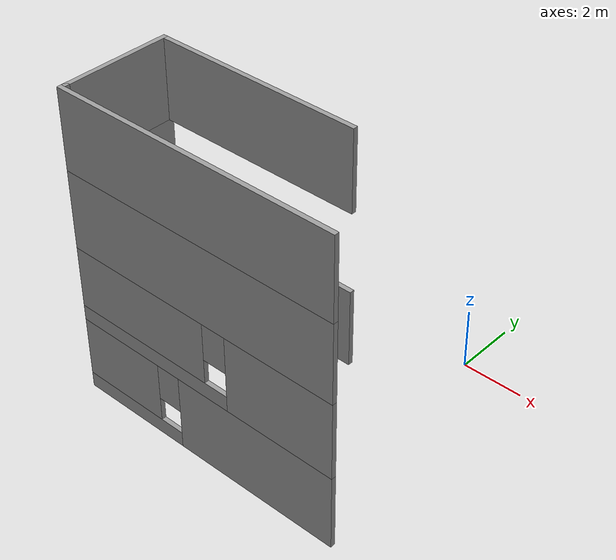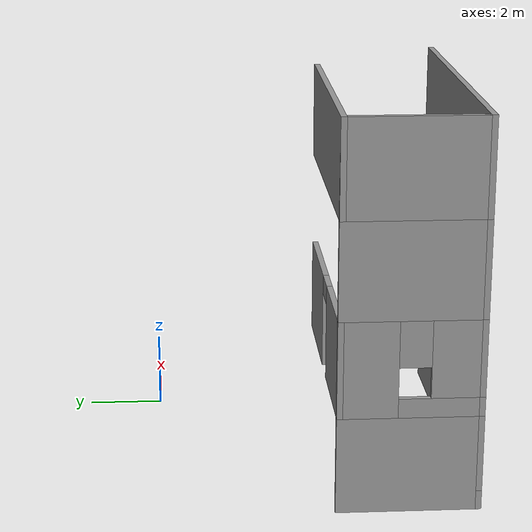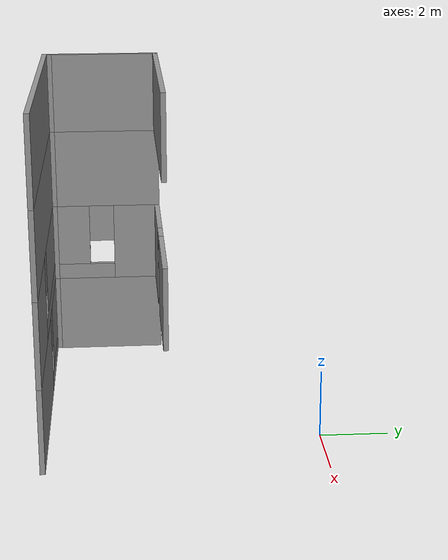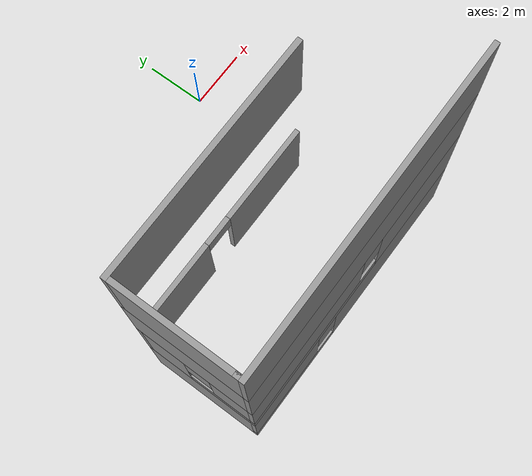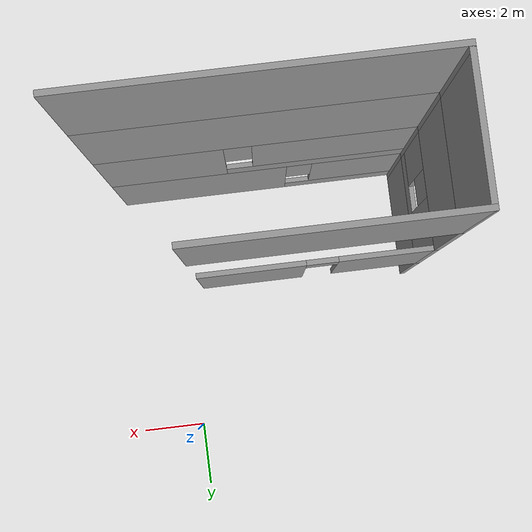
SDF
<sdf version="1.7">
 <model name="Drone_House">
  <pose>0.336432 0.443828 0 0 -0 0</pose>
  <link name="Wall_102">
   <collision name="Wall_102_Collision">
    <geometry><box><size>3.5 0.15 2.5</size></box></geometry>
    <pose>0 0 1.25 0 -0 0</pose>
   </collision>
   <visual name="Wall_102_Visual">
    <pose>0 0 1.25 0 -0 0</pose>
    <geometry><box><size>3.5 0.15 2.5</size></box></geometry>
    <material>
     <script><uri>file://media/materials/scripts/gazebo.material</uri><name>Gazebo/Grey</name></script>
     <ambient>1 1 1 1</ambient>
    </material>
    <meta><layer>2</layer></meta>
   </visual>
   <pose>-7.72394 -6.525 5 0 -0 -1.5708</pose>
  </link>
  <link name="Wall_103">
   <collision name="Wall_103_Collision">
    <geometry><box><size>0.15 0.15 2.5</size></box></geometry>
    <pose>0 0 1.25 0 -0 0</pose>
   </collision>
   <visual name="Wall_103_Visual">
    <pose>0 0 1.25 0 -0 0</pose>
    <geometry><box><size>0.15 0.15 2.5</size></box></geometry>
    <material>
     <script><uri>file://media/materials/scripts/gazebo.material</uri><name>Gazebo/Grey</name></script>
     <ambient>1 1 1 1</ambient>
    </material>
    <meta><layer>2</layer></meta>
   </visual>
   <pose>-7.72394 -8.2 5 0 -0 0</pose>
  </link>
  <link name="Wall_104">
   <collision name="Wall_104_Collision">
    <geometry><box><size>9.25 0.15 2.5</size></box></geometry>
    <pose>0 0 1.25 0 -0 0</pose>
   </collision>
   <visual name="Wall_104_Visual">
    <pose>0 0 1.25 0 -0 0</pose>
    <geometry><box><size>9.25 0.15 2.5</size></box></geometry>
    <material>
     <script><uri>file://media/materials/scripts/gazebo.material</uri><name>Gazebo/Grey</name></script>
     <ambient>1 1 1 1</ambient>
    </material>
    <meta><layer>2</layer></meta>
   </visual>
   <pose>-3.17394 -8.35 5 0 -0 3.14159</pose>
  </link>
  <link name="Wall_107">
   <collision name="Wall_107_Collision">
    <geometry><box><size>6.75 0.15 2.5</size></box></geometry>
    <pose>0 0 1.25 0 -0 0</pose>
   </collision>
   <visual name="Wall_107_Visual">
    <pose>0 0 1.25 0 -0 0</pose>
    <geometry><box><size>6.75 0.15 2.5</size></box></geometry>
    <material>
     <script><uri>file://media/materials/scripts/gazebo.material</uri><name>Gazebo/Grey</name></script>
     <ambient>1 1 1 1</ambient>
    </material>
    <meta><layer>3</layer></meta>
   </visual>
   <pose>-4.42394 -4.85 7.5 0 -0 0</pose>
  </link>
  <link name="Wall_124">
   <collision name="Wall_124_Collision">
    <geometry><box><size>3.5 0.15 2.5</size></box></geometry>
    <pose>0 0 1.25 0 -0 0</pose>
   </collision>
   <visual name="Wall_124_Visual">
    <pose>0 0 1.25 0 -0 0</pose>
    <geometry><box><size>3.5 0.15 2.5</size></box></geometry>
    <material>
     <script><uri>file://media/materials/scripts/gazebo.material</uri><name>Gazebo/Grey</name></script>
     <ambient>1 1 1 1</ambient>
    </material>
    <meta><layer>3</layer></meta>
   </visual>
   <pose>-7.72394 -6.525 7.5 0 -0 -1.5708</pose>
  </link>
  <link name="Wall_125">
   <collision name="Wall_125_Collision">
    <geometry><box><size>0.15 0.15 2.5</size></box></geometry>
    <pose>0 0 1.25 0 -0 0</pose>
   </collision>
   <visual name="Wall_125_Visual">
    <pose>0 0 1.25 0 -0 0</pose>
    <geometry><box><size>0.15 0.15 2.5</size></box></geometry>
    <material>
     <script><uri>file://media/materials/scripts/gazebo.material</uri><name>Gazebo/Grey</name></script>
     <ambient>1 1 1 1</ambient>
    </material>
    <meta><layer>3</layer></meta>
   </visual>
   <pose>-7.72394 -8.2 7.5 0 -0 0</pose>
  </link>
  <link name="Wall_126">
   <collision name="Wall_126_Collision">
    <geometry><box><size>9.25 0.15 2.5</size></box></geometry>
    <pose>0 0 1.25 0 -0 0</pose>
   </collision>
   <visual name="Wall_126_Visual">
    <pose>0 0 1.25 0 -0 0</pose>
    <geometry><box><size>9.25 0.15 2.5</size></box></geometry>
    <material>
     <script><uri>file://media/materials/scripts/gazebo.material</uri><name>Gazebo/Grey</name></script>
     <ambient>1 1 1 1</ambient>
    </material>
    <meta><layer>3</layer></meta>
   </visual>
   <pose>-3.17394 -8.35 7.5 0 -0 3.14159</pose>
  </link>
  <link name="Wall_28">
   <collision name="Wall_28_Collision">
    <geometry><box><size>3.5 0.15 2.5</size></box></geometry>
    <pose>0 0 1.25 0 -0 0</pose>
   </collision>
   <visual name="Wall_28_Visual">
    <pose>0 0 1.25 0 -0 0</pose>
    <geometry><box><size>3.5 0.15 2.5</size></box></geometry>
    <material>
     <script><uri>file://media/materials/scripts/gazebo.material</uri><name>Gazebo/Grey</name></script>
     <ambient>1 1 1 1</ambient>
    </material>
    <meta><layer>0</layer></meta>
   </visual>
   <pose>-7.72394 -6.525 0 0 -0 -1.5708</pose>
  </link>
  <link name="Wall_29">
   <collision name="Wall_29_Collision">
    <geometry><box><size>0.15 0.15 2.5</size></box></geometry>
    <pose>0 0 1.25 0 -0 0</pose>
   </collision>
   <visual name="Wall_29_Visual">
    <pose>0 0 1.25 0 -0 0</pose>
    <geometry><box><size>0.15 0.15 2.5</size></box></geometry>
    <material>
     <script><uri>file://media/materials/scripts/gazebo.material</uri><name>Gazebo/Grey</name></script>
     <ambient>1 1 1 1</ambient>
    </material>
    <meta><layer>0</layer></meta>
   </visual>
   <pose>-7.72394 -8.2 0 0 -0 0</pose>
  </link>
  <link name="Wall_31">
   <pose>-3.17394 -8.35 0 0 -0 3.14159</pose>
   <visual name="Wall_31_Visual_0">
    <pose>-1.87175 0 1.25 0 -0 0</pose>
    <geometry><box><size>5.5065 0.15 2.5</size></box></geometry>
    <material>
     <script><uri>file://media/materials/scripts/gazebo.material</uri><name>Gazebo/Grey</name></script>
     <ambient>1 1 1 1</ambient>
    </material>
    <meta><layer>0</layer></meta>
   </visual>
   <collision name="Wall_31_Collision_0">
    <geometry><box><size>5.5065 0.15 2.5</size></box></geometry>
    <pose>-1.87175 0 1.25 0 -0 0</pose>
   </collision>
   <visual name="Wall_31_Visual_1">
    <pose>2.75325 0 0.25 0 -0 0</pose>
    <geometry><box><size>3.7435 0.15 0.5</size></box></geometry>
    <material>
     <script><uri>file://media/materials/scripts/gazebo.material</uri><name>Gazebo/Grey</name></script>
     <ambient>1 1 1 1</ambient>
    </material>
    <meta><layer>0</layer></meta>
   </visual>
   <collision name="Wall_31_Collision_1">
    <geometry><box><size>3.7435 0.15 0.5</size></box></geometry>
    <pose>2.75325 0 0.25 0 -0 0</pose>
   </collision>
   <visual name="Wall_31_Visual_2">
    <pose>3.15325 0 1.5 0 -0 0</pose>
    <geometry><box><size>2.9435 0.15 2</size></box></geometry>
    <material>
     <script><uri>file://media/materials/scripts/gazebo.material</uri><name>Gazebo/Grey</name></script>
     <ambient>1 1 1 1</ambient>
    </material>
    <meta><layer>0</layer></meta>
   </visual>
   <collision name="Wall_31_Collision_2">
    <geometry><box><size>2.9435 0.15 2</size></box></geometry>
    <pose>3.15325 0 1.5 0 -0 0</pose>
   </collision>
   <visual name="Wall_31_Visual_3">
    <pose>1.2815 0 1.9 0 -0 0</pose>
    <geometry><box><size>0.8 0.15 1.2</size></box></geometry>
    <material>
     <script><uri>file://media/materials/scripts/gazebo.material</uri><name>Gazebo/Grey</name></script>
     <ambient>1 1 1 1</ambient>
    </material>
    <meta><layer>0</layer></meta>
   </visual>
   <collision name="Wall_31_Collision_3">
    <geometry><box><size>0.8 0.15 1.2</size></box></geometry>
    <pose>1.2815 0 1.9 0 -0 0</pose>
   </collision>
  </link>
  <link name="Wall_36">
   <pose>-4.42394 -4.85 2.5 0 -0 0</pose>
   <visual name="Wall_36_Visual_0">
    <pose>-1.98145 0 1.25 0 -0 0</pose>
    <geometry><box><size>2.7871 0.15 2.5</size></box></geometry>
    <material>
     <script><uri>file://media/materials/scripts/gazebo.material</uri><name>Gazebo/Grey</name></script>
     <ambient>1 1 1 1</ambient>
    </material>
    <meta><layer>1</layer></meta>
   </visual>
   <collision name="Wall_36_Collision_0">
    <geometry><box><size>2.7871 0.15 2.5</size></box></geometry>
    <pose>-1.98145 0 1.25 0 -0 0</pose>
   </collision>
   <visual name="Wall_36_Visual_1">
    <pose>1.84355 0 1.25 0 -0 0</pose>
    <geometry><box><size>3.0629 0.15 2.5</size></box></geometry>
    <material>
     <script><uri>file://media/materials/scripts/gazebo.material</uri><name>Gazebo/Grey</name></script>
     <ambient>1 1 1 1</ambient>
    </material>
    <meta><layer>1</layer></meta>
   </visual>
   <collision name="Wall_36_Collision_1">
    <geometry><box><size>3.0629 0.15 2.5</size></box></geometry>
    <pose>1.84355 0 1.25 0 -0 0</pose>
   </collision>
   <visual name="Wall_36_Visual_2">
    <pose>-0.1379 0 2.25 0 -0 0</pose>
    <geometry><box><size>0.9 0.15 0.5</size></box></geometry>
    <material>
     <script><uri>file://media/materials/scripts/gazebo.material</uri><name>Gazebo/Grey</name></script>
     <ambient>1 1 1 1</ambient>
    </material>
    <meta><layer>1</layer></meta>
   </visual>
   <collision name="Wall_36_Collision_2">
    <geometry><box><size>0.9 0.15 0.5</size></box></geometry>
    <pose>-0.1379 0 2.25 0 -0 0</pose>
   </collision>
  </link>
  <link name="Wall_53">
   <pose>-7.72394 -6.525 2.5 0 -0 -1.5708</pose>
   <visual name="Wall_53_Visual_0">
    <pose>-0.996881 0 1.25 0 -0 0</pose>
    <geometry><box><size>1.50624 0.15 2.5</size></box></geometry>
    <material>
     <script><uri>file://media/materials/scripts/gazebo.material</uri><name>Gazebo/Grey</name></script>
     <ambient>1 1 1 1</ambient>
    </material>
    <meta><layer>1</layer></meta>
   </visual>
   <collision name="Wall_53_Collision_0">
    <geometry><box><size>1.50624 0.15 2.5</size></box></geometry>
    <pose>-0.996881 0 1.25 0 -0 0</pose>
   </collision>
   <visual name="Wall_53_Visual_1">
    <pose>0.753119 0 0.25 0 -0 0</pose>
    <geometry><box><size>1.99376 0.15 0.5</size></box></geometry>
    <material>
     <script><uri>file://media/materials/scripts/gazebo.material</uri><name>Gazebo/Grey</name></script>
     <ambient>1 1 1 1</ambient>
    </material>
    <meta><layer>1</layer></meta>
   </visual>
   <collision name="Wall_53_Collision_1">
    <geometry><box><size>1.99376 0.15 0.5</size></box></geometry>
    <pose>0.753119 0 0.25 0 -0 0</pose>
   </collision>
   <visual name="Wall_53_Visual_2">
    <pose>1.15312 0 1.5 0 -0 0</pose>
    <geometry><box><size>1.19376 0.15 2</size></box></geometry>
    <material>
     <script><uri>file://media/materials/scripts/gazebo.material</uri><name>Gazebo/Grey</name></script>
     <ambient>1 1 1 1</ambient>
    </material>
    <meta><layer>1</layer></meta>
   </visual>
   <collision name="Wall_53_Collision_2">
    <geometry><box><size>1.19376 0.15 2</size></box></geometry>
    <pose>1.15312 0 1.5 0 -0 0</pose>
   </collision>
   <visual name="Wall_53_Visual_3">
    <pose>0.156238 0 1.9 0 -0 0</pose>
    <geometry><box><size>0.8 0.15 1.2</size></box></geometry>
    <material>
     <script><uri>file://media/materials/scripts/gazebo.material</uri><name>Gazebo/Grey</name></script>
     <ambient>1 1 1 1</ambient>
    </material>
    <meta><layer>1</layer></meta>
   </visual>
   <collision name="Wall_53_Collision_3">
    <geometry><box><size>0.8 0.15 1.2</size></box></geometry>
    <pose>0.156238 0 1.9 0 -0 0</pose>
   </collision>
  </link>
  <link name="Wall_54">
   <collision name="Wall_54_Collision">
    <geometry><box><size>0.15 0.15 2.5</size></box></geometry>
    <pose>0 0 1.25 0 -0 0</pose>
   </collision>
   <visual name="Wall_54_Visual">
    <pose>0 0 1.25 0 -0 0</pose>
    <geometry><box><size>0.15 0.15 2.5</size></box></geometry>
    <material>
     <script><uri>file://media/materials/scripts/gazebo.material</uri><name>Gazebo/Grey</name></script>
     <ambient>1 1 1 1</ambient>
    </material>
    <meta><layer>1</layer></meta>
   </visual>
   <pose>-7.72394 -8.2 2.5 0 -0 0</pose>
  </link>
  <link name="Wall_55">
   <pose>-3.17394 -8.35 2.5 0 -0 3.14159</pose>
   <visual name="Wall_55_Visual_0">
    <pose>-2.80276 0 1.25 0 -0 0</pose>
    <geometry><box><size>3.64448 0.15 2.5</size></box></geometry>
    <material>
     <script><uri>file://media/materials/scripts/gazebo.material</uri><name>Gazebo/Grey</name></script>
     <ambient>1 1 1 1</ambient>
    </material>
    <meta><layer>1</layer></meta>
   </visual>
   <collision name="Wall_55_Collision_0">
    <geometry><box><size>3.64448 0.15 2.5</size></box></geometry>
    <pose>-2.80276 0 1.25 0 -0 0</pose>
   </collision>
   <visual name="Wall_55_Visual_1">
    <pose>1.82224 0 0.25 0 -0 0</pose>
    <geometry><box><size>5.60551 0.15 0.5</size></box></geometry>
    <material>
     <script><uri>file://media/materials/scripts/gazebo.material</uri><name>Gazebo/Grey</name></script>
     <ambient>1 1 1 1</ambient>
    </material>
    <meta><layer>1</layer></meta>
   </visual>
   <collision name="Wall_55_Collision_1">
    <geometry><box><size>5.60551 0.15 0.5</size></box></geometry>
    <pose>1.82224 0 0.25 0 -0 0</pose>
   </collision>
   <visual name="Wall_55_Visual_2">
    <pose>2.22224 0 1.5 0 -0 0</pose>
    <geometry><box><size>4.80551 0.15 2</size></box></geometry>
    <material>
     <script><uri>file://media/materials/scripts/gazebo.material</uri><name>Gazebo/Grey</name></script>
     <ambient>1 1 1 1</ambient>
    </material>
    <meta><layer>1</layer></meta>
   </visual>
   <collision name="Wall_55_Collision_2">
    <geometry><box><size>4.80551 0.15 2</size></box></geometry>
    <pose>2.22224 0 1.5 0 -0 0</pose>
   </collision>
   <visual name="Wall_55_Visual_3">
    <pose>-0.580515 0 1.9 0 -0 0</pose>
    <geometry><box><size>0.8 0.15 1.2</size></box></geometry>
    <material>
     <script><uri>file://media/materials/scripts/gazebo.material</uri><name>Gazebo/Grey</name></script>
     <ambient>1 1 1 1</ambient>
    </material>
    <meta><layer>1</layer></meta>
   </visual>
   <collision name="Wall_55_Collision_3">
    <geometry><box><size>0.8 0.15 1.2</size></box></geometry>
    <pose>-0.580515 0 1.9 0 -0 0</pose>
   </collision>
  </link>
  <static>1</static>
 </model>
</sdf>
